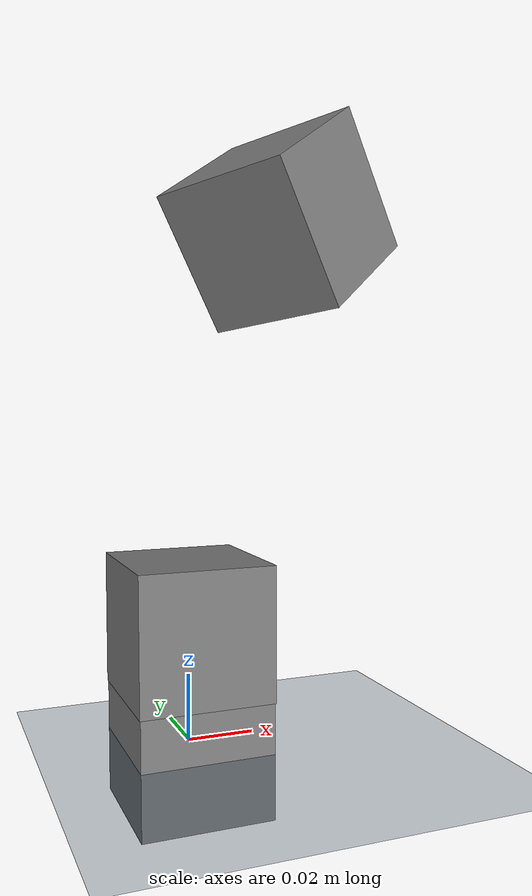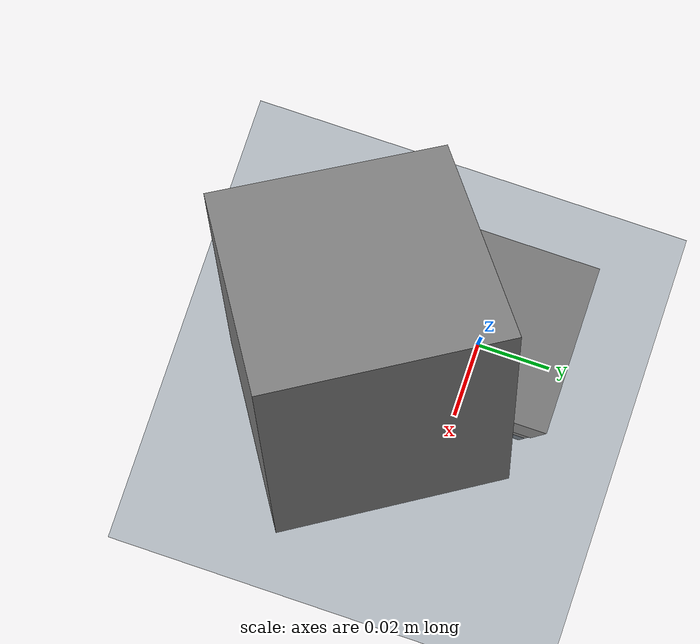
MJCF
<?xml version='1.0' encoding='utf-8'?>
<mujoco model="scene">
  <compiler angle="radian" meshdir="assets" texturedir="../assets/" autolimits="true" discardvisual="true" />

  <visual>
    <global azimuth="160" elevation="-20" offwidth="1280" offheight="720" />
    <headlight ambient="0.3 0.3 0.3" diffuse="0.6 0.6 0.6" specular="0 0 0" />
    <rgba haze="0.15 0.25 0.35 1" />
  </visual>

  <default>

    <equality solref="0.002" solimp="0.99 0.999 0.0005" />
    <default class="reachy_mini">
      <joint armature="0.005" frictionloss="0.1" />

      <equality solref="0.02" solimp="0.9 0.95 0.001" />
      <general biastype="affine" gainprm="50" biasprm="0 -50 1" />
      <default class="visual">
        </default>
      <default class="collision">
        <geom type="mesh" group="3" />
      </default>
    </default>
    <default class="perfect_actuator">
      <joint armature="0.001" damping="0.15" frictionloss="0.1" />
      <geom contype="0" conaffinity="0" />

      <equality solref="0.02" solimp="0.9 0.95 0.001" />
      <general forcerange="-20 20" biastype="affine" gainprm="10" biasprm="0 -10 -0.1" />
      <default class="chosen_actuator" />
    </default>
    <default class="xc330m288t">
      <joint armature="0.0018" damping="0.095" frictionloss="0.058" />
      <geom contype="0" conaffinity="0" />

      <equality solref="0.02" solimp="0.9 0.95 0.001" />
      <general forcerange="-0.8 0.8" biastype="affine" gainprm="2.54" biasprm="0 -2.54" />
    </default>
    <default class="sts3215_345">
      <joint armature="0.027" damping="0.56" frictionloss="0.068" />
      <geom contype="0" conaffinity="0" />

      <equality solref="0.02" solimp="0.9 0.95 0.001" />
      <general forcerange="-3.23 3.23" biastype="affine" gainprm="17.11" biasprm="0 -17.11" />
    </default>
    <default class="sts3215_147">
      <joint armature="0.011" damping="0.1" frictionloss="0.028" />
      <geom contype="0" conaffinity="0" />

      <equality solref="0.02" solimp="0.9 0.95 0.001" />
      <general forcerange="-1.35 1.35" biastype="affine" gainprm="17.11" biasprm="0 -17.11" />
    </default>
  </default>

  <asset>
    <texture type="skybox" colorspace="auto" builtin="gradient" rgb1="0.3 0.5 0.7" rgb2="0 0 0" width="512" height="3072" />
    <texture type="2d" colorspace="auto" name="groundplane" builtin="checker" mark="edge" rgb1="0.2 0.3 0.4" rgb2="0.1 0.2 0.3" markrgb="0.8 0.8 0.8" width="300" height="300" />
    <material name="groundplane" texture="groundplane" texrepeat="5 5" texuniform="true" reflectance="0.2" />
    </asset>

  <worldbody>
    <geom name="floor" size="0 0 0.05" type="plane" material="groundplane" />
    <camera name="studio_close" target="xl_330" resolution="640 640" pos="0.8 -0.2 0.4" mode="targetbodycom" fovy="35" />
    <light pos="-0.5 0 3.5" type="directional" />
    <body name="body_foot_3dprint" childclass="reachy_mini">
      <inertial pos="0.00290221 0.000112574 0.0132607" quat="0.505414 0.493925 -0.506315 0.494207" mass="0.0617881" diaginertia="0.000110345 6.91567e-05 6.07277e-05" />
      <body name="body_down_3dprint" pos="-2.45997e-07 0 0.0348" quat="0.707107 0 0 -0.707107">
        <inertial pos="2.19196e-06 0.000620543 0.0201687" quat="0.462142 0.534844 -0.534825 0.462957" mass="0.78209" diaginertia="0.00255074 0.00233791 0.00223808" />
        <joint name="yaw_body" class="chosen_actuator" range="-2.79253 2.79253" />
        <body name="dc15_a01_horn_dummy" pos="-0.0328112 0.0304906 0.0418333" quat="0.612372 0.612372 0.353553 0.353553">
          <inertial pos="0.0237505 1.13786e-09 0.00335838" quat="0 0.649022 0 0.76077" mass="0.00366675" diaginertia="1.29627e-06 1.28019e-06 5.48965e-08" />
          <joint name="stewart_1" class="chosen_actuator" range="-0.837758 1.39626" />
          <body name="stewart_link_rod" pos="0.04 -1.6545e-10 0.007" quat="0.497033 0.00414178 -0.0814283 0.863893">
            <inertial pos="0.0425001 8.43768e-11 -1.88428e-09" quat="0 0.707107 0 0.707107" mass="0.00503424" diaginertia="3.66473e-06 3.65211e-06 2.63976e-08" />
            <joint name="passive_1" class="chosen_actuator" type="ball" />
            <site name="closing_1_1" pos="0.085 0 0" group="3" />
          </body>
        </body>
        <body name="dc15_a01_horn_dummy_2" pos="-0.0428112 0.01317 0.0418333" quat="0.353553 -0.353553 0.612372 -0.612372">
          <inertial pos="0.0237505 1.27591e-09 0.00335838" quat="0 0.649022 0 0.76077" mass="0.00366675" diaginertia="1.29627e-06 1.28019e-06 5.48965e-08" />
          <joint name="stewart_2" class="chosen_actuator" range="-1.39626 1.22173" />
          <body name="stewart_link_rod_2" pos="0.04 0 0.007" quat="0 0 1 0">
            <inertial pos="0.0214999 -0.0364688 -0.00374429" quat="0.312619 0.626202 -0.389771 0.598514" mass="0.00503424" diaginertia="3.66473e-06 3.65212e-06 2.63974e-08" />
            <joint name="passive_2" class="chosen_actuator" type="ball" />
            <site name="closing_2_1" pos="0.043 -0.0729378 -0.00748861" quat="0.0195742 -0.496665 -0.866005 -0.0545625" group="3" />
          </body>
        </body>
        <body name="dc15_a01_horn_dummy_3" pos="-0.01 -0.0436606 0.0418333" quat="0 0 0.707107 0.707107">
          <inertial pos="0.0237505 1.27591e-09 0.00335838" quat="0 0.649022 0 0.76077" mass="0.00366675" diaginertia="1.29627e-06 1.28019e-06 5.48965e-08" />
          <joint name="stewart_3" class="chosen_actuator" range="-0.837758 1.39626" />
          <body name="stewart_link_rod_3" pos="0.04 0 0.007" quat="0.848296 0.182577 -0.0544081 -0.494063">
            <inertial pos="-0.0424999 8.43768e-11 -1.88428e-09" quat="0 0.707107 0 0.707107" mass="0.00503424" diaginertia="3.66473e-06 3.65211e-06 2.63976e-08" />
            <joint name="passive_3" class="chosen_actuator" type="ball" />
            <site name="closing_3_1" pos="-0.085 0 0" quat="1 0 0 0" group="3" />
          </body>
        </body>
        <body name="dc15_a01_horn_dummy_4" pos="0.01 -0.0436606 0.0418333" quat="0.707107 -0.707107 0 0">
          <inertial pos="0.0237505 1.27591e-09 0.00335838" quat="0 0.649022 0 0.76077" mass="0.00366675" diaginertia="1.29627e-06 1.28019e-06 5.48965e-08" />
          <joint name="stewart_4" class="chosen_actuator" range="-1.39626 0.837758" />
          <body name="stewart_link_rod_4" pos="0.04 0 0.007" quat="0.865702 -0.0591779 0.0169265 0.496762">
            <inertial pos="-0.0424999 8.43769e-11 -1.88428e-09" quat="0 0.707107 0 0.707107" mass="0.00503424" diaginertia="3.66473e-06 3.65211e-06 2.63976e-08" />
            <joint name="passive_4" class="chosen_actuator" type="ball" />
            <site name="closing_4_1" pos="-0.085 0 0" group="3" />
          </body>
        </body>
        <body name="dc15_a01_horn_dummy_5" pos="0.0428112 0.01317 0.0418333" quat="0.612372 0.612372 -0.353553 -0.353553">
          <inertial pos="0.0237505 1.27591e-09 0.00335838" quat="0 0.649022 0 0.76077" mass="0.00366675" diaginertia="1.29627e-06 1.28019e-06 5.48965e-08" />
          <joint name="stewart_5" class="chosen_actuator" range="-1.22173 1.39626" />
          <body name="stewart_link_rod_5" pos="0.04 0 0.007" quat="0.864425 0.0755679 0.00751236 -0.496993">
            <inertial pos="-0.0424999 8.43768e-11 -1.88428e-09" quat="0 0.707107 0 0.707107" mass="0.00503424" diaginertia="3.66473e-06 3.65211e-06 2.63976e-08" />
            <joint name="passive_5" class="chosen_actuator" type="ball" />
            <site name="closing_5_1" pos="-0.085 0 0" quat="1 0 0 0" group="3" />
          </body>
        </body>
        <body name="dc15_a01_horn_dummy_6" pos="0.0328112 0.0304906 0.0418333" quat="0.353553 -0.353553 -0.612372 0.612372">
          <inertial pos="0.0237505 1.27591e-09 0.00335838" quat="0 0.649022 0 0.76077" mass="0.00366675" diaginertia="1.29627e-06 1.28019e-06 5.48965e-08" />
          <joint name="stewart_6" class="chosen_actuator" range="-1.39626 0.837758" />
          <body name="stewart_link_rod_6" pos="0.04 0 0.007" quat="0.0566689 0.865869 0.496711 -0.018366">
            <inertial pos="-0.0424999 8.43768e-11 -1.88428e-09" quat="0 0.707107 0 0.707107" mass="0.00503424" diaginertia="3.66473e-06 3.65211e-06 2.63976e-08" />
            <joint name="passive_6" class="chosen_actuator" type="ball" />
            <body name="xl_330" pos="-0.085 0 0" quat="0 1 0 0">
              <inertial pos="-0.0487051 -0.0237648 0.020658" quat="0.893058 0.257766 -0.0178367 0.368356" mass="0.259259" diaginertia="0.000660595 0.000616616 0.000405509" />
              <joint name="passive_7" class="chosen_actuator" type="ball" />
              <site name="closing_1_2" pos="0.00768882 -0.0217774 0.0368953" quat="0.297432 -0.759048 0.40183 0.417029" group="3" />
              <site name="closing_2_2" pos="0.00307947 -0.0167102 0.049105" quat="0.297432 -0.759048 0.40183 0.417029" group="3" />
              <site name="closing_3_2" pos="-0.0189403 0.0208215 0.050171" quat="0.199279 0.740682 -0.458499 0.44884" group="3" />
              <site name="closing_4_2" pos="-0.0214133 0.0278259 0.0383042" quat="0.199279 0.740682 -0.458499 0.44884" group="3" />
              <site name="closing_5_2" pos="-0.00708235 0.0120716 0.000342873" quat="0.0270842 -0.96349 -0.261035 -0.0530577" group="3" />
              <site name="camera_optical" pos="-0.0321159 -0.05047 0.00257878" quat="0.44884 0.458499 0.740682 -0.199279" group="3" />
              <site name="head" pos="-0.00611127 0.00370522 0.0291364" quat="0.465151 0.724371 -0.182968 -0.474809" group="3" />
              <body pos="-0.0321159 -0.05047 0.00257878" quat="0.458499 -0.44884 0.199279 0.740682">
                <site name="camera" group="3" />
                <camera name="eye_camera" resolution="1280 720" fovy="80" />
              </body>
              <body name="dc15_a01_horn_dummy_7" pos="-0.0948524 0.0197779 -0.00445785" quat="0.652996 0.376401 0.603671 -0.259807">
                <inertial pos="2.09613e-05 -0.0378463 -0.00866471" quat="0.698231 0.71585 -0.00400065 0.00396065" mass="0.0105926" diaginertia="2.69314e-05 2.69041e-05 2.81676e-07" />
                <joint name="right_antenna" class="chosen_actuator" />
                </body>
              <body name="dc15_a01_horn_dummy_8" pos="-0.0764135 -0.0324475 0.0840224" quat="0.266359 0.455758 0.848455 -0.0382396">
                <inertial pos="2.09613e-05 -0.0378463 -0.00866471" quat="0.698231 0.71585 -0.00400065 0.00396065" mass="0.0105926" diaginertia="2.69314e-05 2.69041e-05 2.81676e-07" />
                <joint name="left_antenna" class="chosen_actuator" />
                </body>
            <geom name="xl_330_box_col" type="box" size="0.02000 0.02000 0.02000" contype="1" conaffinity="1" friction="1 0.5 0.01" /></body>
          </body>
        </body>
      <geom name="body_down_3dprint_box_col" type="box" size="0.02000 0.02000 0.02000" contype="1" conaffinity="1" friction="1 0.5 0.01" /></body>
    <geom name="body_foot_3dprint_box_col" type="box" size="0.01977 0.01977 0.01977" contype="1" conaffinity="1" friction="1 0.5 0.01" /></body>
  </worldbody>

  <equality>
    <connect site1="closing_1_1" site2="closing_1_2" />
    <connect site1="closing_2_1" site2="closing_2_2" />
    <connect site1="closing_3_1" site2="closing_3_2" />
    <connect site1="closing_4_1" site2="closing_4_2" />
    <connect site1="closing_5_1" site2="closing_5_2" />
  </equality>

  <actuator>
    <general name="yaw_body" class="chosen_actuator" joint="yaw_body" ctrlrange="-2.79253 2.79253" />
    <general name="stewart_1" class="chosen_actuator" joint="stewart_1" ctrlrange="-0.837758 1.39626" />
    <general name="stewart_2" class="chosen_actuator" joint="stewart_2" ctrlrange="-1.39626 1.22173" />
    <general name="stewart_3" class="chosen_actuator" joint="stewart_3" ctrlrange="-0.837758 1.39626" />
    <general name="stewart_4" class="chosen_actuator" joint="stewart_4" ctrlrange="-1.39626 0.837758" />
    <general name="stewart_5" class="chosen_actuator" joint="stewart_5" ctrlrange="-1.22173 1.39626" />
    <general name="stewart_6" class="chosen_actuator" joint="stewart_6" ctrlrange="-1.39626 0.837758" />
    <general name="right_antenna" class="chosen_actuator" joint="right_antenna" />
    <general name="left_antenna" class="chosen_actuator" joint="left_antenna" />
  </actuator>
</mujoco>
